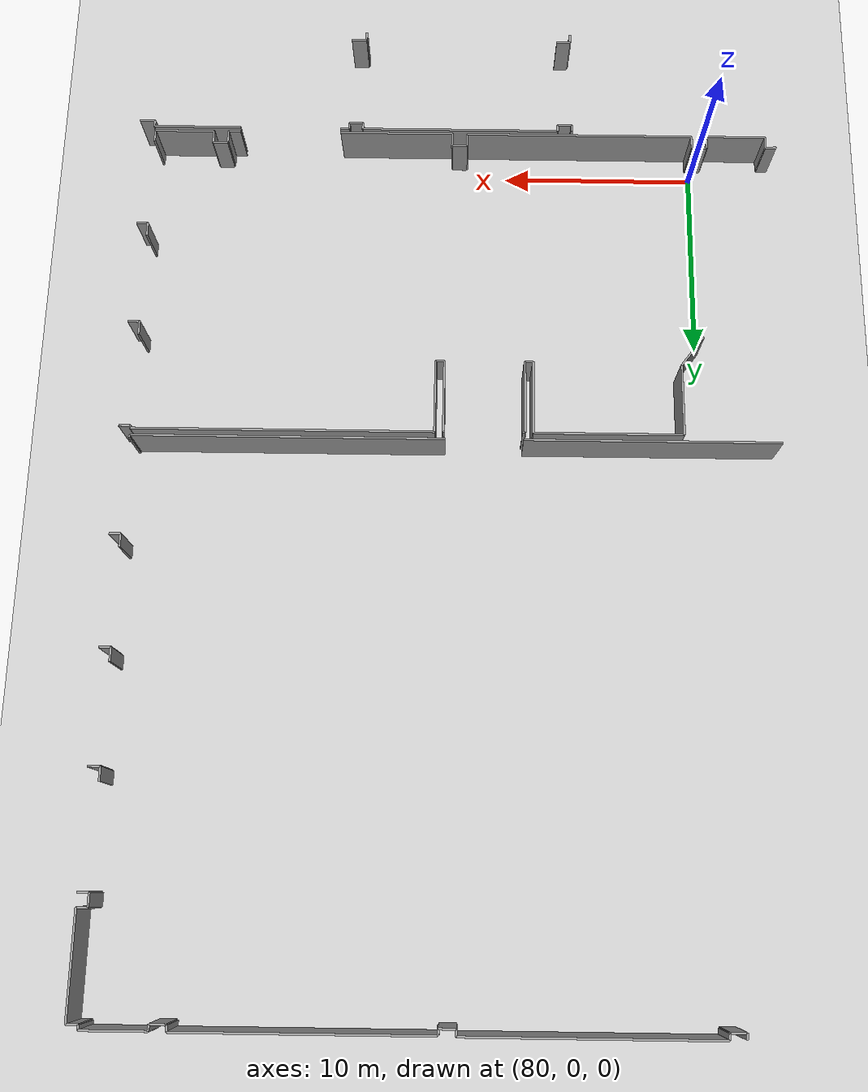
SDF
<sdf version="1.6">
 <world name="default">
  <model name="ground_plane">
   <static>1</static>
   <link name="link">
    <collision name="collision">
     <geometry><plane><normal>0 0 1</normal><size>100 100</size></plane></geometry>
     <surface><friction><ode><mu>100</mu><mu2>50</mu2></ode></friction></surface>
    </collision>
    <visual name="visual">
     <cast_shadows>0</cast_shadows>
     <geometry><plane><normal>0 0 1</normal><size>100 100</size></plane></geometry>
     <material>
      <script><uri>file://media/materials/scripts/gazebo.material</uri><name>Gazebo/Grey</name></script>
     </material>
    </visual>
   </link>
  </model>
  <model name="50015847">
   <static>1</static>
   <link name="Wall_616">
    <collision name="Wall_616_Collision">
     <geometry><box><size>1.94935909894 0.1 2.5</size></box></geometry>
     <pose>0.974679549469 0 1.25 0 0 0</pose>
    </collision>
    <visual name="Wall_616_Visual">
     <pose>0.974679549469 0 1.25 0 0 0</pose>
     <geometry><box><size>1.94935909894 0.1 2.5</size></box></geometry>
     <material>
      <script><uri>file://media/materials/scripts/gazebo.material</uri><name>Gazebo/Grey</name></script>
      <ambient>1 1 1 1</ambient>
     </material>
    </visual>
    <pose>212.298774597 -33.6772258097 0 0 0 0.925756276131</pose>
   </link>
   <link name="Wall_617">
    <collision name="Wall_617_Collision">
     <geometry><box><size>3.7372247928 0.1 2.5</size></box></geometry>
     <pose>1.8686123964 0 1.25 0 0 0</pose>
    </collision>
    <visual name="Wall_617_Visual">
     <pose>1.8686123964 0 1.25 0 0 0</pose>
     <geometry><box><size>3.7372247928 0.1 2.5</size></box></geometry>
     <material>
      <script><uri>file://media/materials/scripts/gazebo.material</uri><name>Gazebo/Grey</name></script>
      <ambient>1 1 1 1</ambient>
     </material>
    </visual>
    <pose>213.470788631 -32.1195403468 0 0 0 1.57079632679</pose>
   </link>
   <link name="Wall_618">
    <collision name="Wall_618_Collision">
     <geometry><box><size>7.55326180912 0.1 2.5</size></box></geometry>
     <pose>3.77663090456 0 1.25 0 0 0</pose>
    </collision>
    <visual name="Wall_618_Visual">
     <pose>3.77663090456 0 1.25 0 0 0</pose>
     <geometry><box><size>7.55326180912 0.1 2.5</size></box></geometry>
     <material>
      <script><uri>file://media/materials/scripts/gazebo.material</uri><name>Gazebo/Grey</name></script>
      <ambient>1 1 1 1</ambient>
     </material>
    </visual>
    <pose>213.470788631 -28.382315554 0 0 0 0.0</pose>
   </link>
   <link name="Wall_619">
    <collision name="Wall_619_Collision">
     <geometry><box><size>3.82086744292 0.1 2.5</size></box></geometry>
     <pose>1.91043372146 0 1.25 0 0 0</pose>
    </collision>
    <visual name="Wall_619_Visual">
     <pose>1.91043372146 0 1.25 0 0 0</pose>
     <geometry><box><size>3.82086744292 0.1 2.5</size></box></geometry>
     <material>
      <script><uri>file://media/materials/scripts/gazebo.material</uri><name>Gazebo/Grey</name></script>
      <ambient>1 1 1 1</ambient>
     </material>
    </visual>
    <pose>221.02405044 -28.382315554 0 0 0 -1.57079632679</pose>
   </link>
   <link name="Wall_620">
    <collision name="Wall_620_Collision">
     <geometry><box><size>0.414399755936 0.1 2.5</size></box></geometry>
     <pose>0.207199877968 0 1.25 0 0 0</pose>
    </collision>
    <visual name="Wall_620_Visual">
     <pose>0.207199877968 0 1.25 0 0 0</pose>
     <geometry><box><size>0.414399755936 0.1 2.5</size></box></geometry>
     <material>
      <script><uri>file://media/materials/scripts/gazebo.material</uri><name>Gazebo/Grey</name></script>
      <ambient>1 1 1 1</ambient>
     </material>
    </visual>
    <pose>221.02405044 -32.2031829969 0 0 0 0.0</pose>
   </link>
   <link name="Wall_621">
    <collision name="Wall_621_Collision">
     <geometry><box><size>3.79417298012 0.1 2.5</size></box></geometry>
     <pose>1.89708649006 0 1.25 0 0 0</pose>
    </collision>
    <visual name="Wall_621_Visual">
     <pose>1.89708649006 0 1.25 0 0 0</pose>
     <geometry><box><size>3.79417298012 0.1 2.5</size></box></geometry>
     <material>
      <script><uri>file://media/materials/scripts/gazebo.material</uri><name>Gazebo/Grey</name></script>
      <ambient>1 1 1 1</ambient>
     </material>
    </visual>
    <pose>221.438450196 -32.2031829969 0 0 0 1.57079632679</pose>
   </link>
   <link name="Wall_622">
    <collision name="Wall_622_Collision">
     <geometry><box><size>0.129658819342 0.1 2.5</size></box></geometry>
     <pose>0.064829409671 0 1.25 0 0 0</pose>
    </collision>
    <visual name="Wall_622_Visual">
     <pose>0.064829409671 0 1.25 0 0 0</pose>
     <geometry><box><size>0.129658819342 0.1 2.5</size></box></geometry>
     <material>
      <script><uri>file://media/materials/scripts/gazebo.material</uri><name>Gazebo/Grey</name></script>
      <ambient>1 1 1 1</ambient>
     </material>
    </visual>
    <pose>221.438450196 -28.4090100168 0 0 0 0.0</pose>
   </link>
   <link name="Wall_623">
    <collision name="Wall_623_Collision">
     <geometry><box><size>0.0661005745665 0.1 2.5</size></box></geometry>
     <pose>0.0330502872833 0 1.25 0 0 0</pose>
    </collision>
    <visual name="Wall_623_Visual">
     <pose>0.0330502872833 0 1.25 0 0 0</pose>
     <geometry><box><size>0.0661005745665 0.1 2.5</size></box></geometry>
     <material>
      <script><uri>file://media/materials/scripts/gazebo.material</uri><name>Gazebo/Grey</name></script>
      <ambient>1 1 1 1</ambient>
     </material>
    </visual>
    <pose>225.475669904 -28.4090100168 0 0 0 0.0</pose>
   </link>
   <link name="Wall_624">
    <collision name="Wall_624_Collision">
     <geometry><box><size>3.79518991204 0.1 2.5</size></box></geometry>
     <pose>1.89759495602 0 1.25 0 0 0</pose>
    </collision>
    <visual name="Wall_624_Visual">
     <pose>1.89759495602 0 1.25 0 0 0</pose>
     <geometry><box><size>3.79518991204 0.1 2.5</size></box></geometry>
     <material>
      <script><uri>file://media/materials/scripts/gazebo.material</uri><name>Gazebo/Grey</name></script>
      <ambient>1 1 1 1</ambient>
     </material>
    </visual>
    <pose>225.541770478 -28.4090100168 0 0 0 -1.57079632679</pose>
   </link>
   <link name="Wall_625">
    <collision name="Wall_625_Collision">
     <geometry><box><size>0.437280724056 0.1 2.5</size></box></geometry>
     <pose>0.218640362028 0 1.25 0 0 0</pose>
    </collision>
    <visual name="Wall_625_Visual">
     <pose>0.218640362028 0 1.25 0 0 0</pose>
     <geometry><box><size>0.437280724056 0.1 2.5</size></box></geometry>
     <material>
      <script><uri>file://media/materials/scripts/gazebo.material</uri><name>Gazebo/Grey</name></script>
      <ambient>1 1 1 1</ambient>
     </material>
    </visual>
    <pose>225.541770478 -32.2041999288 0 0 0 0.0</pose>
   </link>
   <link name="Wall_626">
    <collision name="Wall_626_Collision">
     <geometry><box><size>3.82493517059 0.1 2.5</size></box></geometry>
     <pose>1.9124675853 0 1.25 0 0 0</pose>
    </collision>
    <visual name="Wall_626_Visual">
     <pose>1.9124675853 0 1.25 0 0 0</pose>
     <geometry><box><size>3.82493517059 0.1 2.5</size></box></geometry>
     <material>
      <script><uri>file://media/materials/scripts/gazebo.material</uri><name>Gazebo/Grey</name></script>
      <ambient>1 1 1 1</ambient>
     </material>
    </visual>
    <pose>225.979051203 -32.2041999288 0 0 0 1.57079632679</pose>
   </link>
   <link name="Wall_627">
    <collision name="Wall_627_Collision">
     <geometry><box><size>15.2412670972 0.1 2.5</size></box></geometry>
     <pose>7.62063354858 0 1.25 0 0 0</pose>
    </collision>
    <visual name="Wall_627_Visual">
     <pose>7.62063354858 0 1.25 0 0 0</pose>
     <geometry><box><size>15.2412670972 0.1 2.5</size></box></geometry>
     <material>
      <script><uri>file://media/materials/scripts/gazebo.material</uri><name>Gazebo/Grey</name></script>
      <ambient>1 1 1 1</ambient>
     </material>
    </visual>
    <pose>225.979051203 -28.3792647582 0 0 0 0.0</pose>
   </link>
   <link name="Wall_628">
    <collision name="Wall_628_Collision">
     <geometry><box><size>0.133472314029 0.1 2.5</size></box></geometry>
     <pose>0.0667361570143 0 1.25 0 0 0</pose>
    </collision>
    <visual name="Wall_628_Visual">
     <pose>0.0667361570143 0 1.25 0 0 0</pose>
     <geometry><box><size>0.133472314029 0.1 2.5</size></box></geometry>
     <material>
      <script><uri>file://media/materials/scripts/gazebo.material</uri><name>Gazebo/Grey</name></script>
      <ambient>1 1 1 1</ambient>
     </material>
    </visual>
    <pose>241.2203183 -28.3792647582 0 0 0 -1.57079632679</pose>
   </link>
   <link name="Wall_629">
    <collision name="Wall_629_Collision">
     <geometry><box><size>0.589820511517 0.1 2.5</size></box></geometry>
     <pose>0.294910255758 0 1.25 0 0 0</pose>
    </collision>
    <visual name="Wall_629_Visual">
     <pose>0.294910255758 0 1.25 0 0 0</pose>
     <geometry><box><size>0.589820511517 0.1 2.5</size></box></geometry>
     <material>
      <script><uri>file://media/materials/scripts/gazebo.material</uri><name>Gazebo/Grey</name></script>
      <ambient>1 1 1 1</ambient>
     </material>
    </visual>
    <pose>241.2203183 -28.5127370723 0 0 0 0.0</pose>
   </link>
   <link name="Wall_632">
    <collision name="Wall_632_Collision">
     <geometry><box><size>0.707276147862 0.1 2.5</size></box></geometry>
     <pose>0.353638073931 0 1.25 0 0 0</pose>
    </collision>
    <visual name="Wall_632_Visual">
     <pose>0.353638073931 0 1.25 0 0 0</pose>
     <geometry><box><size>0.707276147862 0.1 2.5</size></box></geometry>
     <material>
      <script><uri>file://media/materials/scripts/gazebo.material</uri><name>Gazebo/Grey</name></script>
      <ambient>1 1 1 1</ambient>
     </material>
    </visual>
    <pose>241.21269131 -33.4573142828 0 0 0 -1.57079632679</pose>
   </link>
   <link name="Wall_633">
    <collision name="Wall_633_Collision">
     <geometry><box><size>0.59744750089 0.1 2.5</size></box></geometry>
     <pose>0.298723750445 0 1.25 0 0 0</pose>
    </collision>
    <visual name="Wall_633_Visual">
     <pose>0.298723750445 0 1.25 0 0 0</pose>
     <geometry><box><size>0.59744750089 0.1 2.5</size></box></geometry>
     <material>
      <script><uri>file://media/materials/scripts/gazebo.material</uri><name>Gazebo/Grey</name></script>
      <ambient>1 1 1 1</ambient>
     </material>
    </visual>
    <pose>241.21269131 -34.1645904307 0 0 0 0.0</pose>
   </link>
   <link name="Wall_636">
    <collision name="Wall_636_Collision">
     <geometry><box><size>0.684903645701 0.1 2.5</size></box></geometry>
     <pose>0.34245182285 0 1.25 0 0 0</pose>
    </collision>
    <visual name="Wall_636_Visual">
     <pose>0.34245182285 0 1.25 0 0 0</pose>
     <geometry><box><size>0.684903645701 0.1 2.5</size></box></geometry>
     <material>
      <script><uri>file://media/materials/scripts/gazebo.material</uri><name>Gazebo/Grey</name></script>
      <ambient>1 1 1 1</ambient>
     </material>
    </visual>
    <pose>241.230487619 -39.075354655 0 0 0 -1.57079632679</pose>
   </link>
   <link name="Wall_637">
    <collision name="Wall_637_Collision">
     <geometry><box><size>0.582193522144 0.1 2.5</size></box></geometry>
     <pose>0.291096761072 0 1.25 0 0 0</pose>
    </collision>
    <visual name="Wall_637_Visual">
     <pose>0.291096761072 0 1.25 0 0 0</pose>
     <geometry><box><size>0.582193522144 0.1 2.5</size></box></geometry>
     <material>
      <script><uri>file://media/materials/scripts/gazebo.material</uri><name>Gazebo/Grey</name></script>
      <ambient>1 1 1 1</ambient>
     </material>
    </visual>
    <pose>241.230487619 -39.7602583007 0 0 0 0.0</pose>
   </link>
   <link name="Wall_640">
    <collision name="Wall_640_Collision">
     <geometry><box><size>0.622108099863 0.1 2.5</size></box></geometry>
     <pose>0.311054049931 0 1.25 0 0 0</pose>
    </collision>
    <visual name="Wall_640_Visual">
     <pose>0.311054049931 0 1.25 0 0 0</pose>
     <geometry><box><size>0.622108099863 0.1 2.5</size></box></geometry>
     <material>
      <script><uri>file://media/materials/scripts/gazebo.material</uri><name>Gazebo/Grey</name></script>
      <ambient>1 1 1 1</ambient>
     </material>
    </visual>
    <pose>241.248283927 -44.6682259623 0 0 0 -1.57079632679</pose>
   </link>
   <link name="Wall_641">
    <collision name="Wall_641_Collision">
     <geometry><box><size>3.1423196217 0.1 2.5</size></box></geometry>
     <pose>1.57115981085 0 1.25 0 0 0</pose>
    </collision>
    <visual name="Wall_641_Visual">
     <pose>1.57115981085 0 1.25 0 0 0</pose>
     <geometry><box><size>3.1423196217 0.1 2.5</size></box></geometry>
     <material>
      <script><uri>file://media/materials/scripts/gazebo.material</uri><name>Gazebo/Grey</name></script>
      <ambient>1 1 1 1</ambient>
     </material>
    </visual>
    <pose>241.248283927 -45.2903340621 0 0 0 3.14159265359</pose>
   </link>
   <link name="Wall_642">
    <collision name="Wall_642_Collision">
     <geometry><box><size>0.678293588244 0.1 2.5</size></box></geometry>
     <pose>0.339146794122 0 1.25 0 0 0</pose>
    </collision>
    <visual name="Wall_642_Visual">
     <pose>0.339146794122 0 1.25 0 0 0</pose>
     <geometry><box><size>0.678293588244 0.1 2.5</size></box></geometry>
     <material>
      <script><uri>file://media/materials/scripts/gazebo.material</uri><name>Gazebo/Grey</name></script>
      <ambient>1 1 1 1</ambient>
     </material>
    </visual>
    <pose>238.105964306 -45.2903340621 0 0 0 1.57079632679</pose>
   </link>
   <link name="Wall_643">
    <collision name="Wall_643_Collision">
     <geometry><box><size>0.780495245843 0.1 2.5</size></box></geometry>
     <pose>0.390247622922 0 1.25 0 0 0</pose>
    </collision>
    <visual name="Wall_643_Visual">
     <pose>0.390247622922 0 1.25 0 0 0</pose>
     <geometry><box><size>0.780495245843 0.1 2.5</size></box></geometry>
     <material>
      <script><uri>file://media/materials/scripts/gazebo.material</uri><name>Gazebo/Grey</name></script>
      <ambient>1 1 1 1</ambient>
     </material>
    </visual>
    <pose>238.105964306 -44.6120404739 0 0 0 3.14159265359</pose>
   </link>
   <link name="Wall_644">
    <collision name="Wall_644_Collision">
     <geometry><box><size>0.683124014847 0.1 2.5</size></box></geometry>
     <pose>0.341562007424 0 1.25 0 0 0</pose>
    </collision>
    <visual name="Wall_644_Visual">
     <pose>0.341562007424 0 1.25 0 0 0</pose>
     <geometry><box><size>0.683124014847 0.1 2.5</size></box></geometry>
     <material>
      <script><uri>file://media/materials/scripts/gazebo.material</uri><name>Gazebo/Grey</name></script>
      <ambient>1 1 1 1</ambient>
     </material>
    </visual>
    <pose>237.32546906 -44.6120404739 0 0 0 -1.57079632679</pose>
   </link>
   <link name="Wall_645">
    <collision name="Wall_645_Collision">
     <geometry><box><size>0.655921086083 0.1 2.5</size></box></geometry>
     <pose>0.327960543042 0 1.25 0 0 0</pose>
    </collision>
    <visual name="Wall_645_Visual">
     <pose>0.327960543042 0 1.25 0 0 0</pose>
     <geometry><box><size>0.655921086083 0.1 2.5</size></box></geometry>
     <material>
      <script><uri>file://media/materials/scripts/gazebo.material</uri><name>Gazebo/Grey</name></script>
      <ambient>1 1 1 1</ambient>
     </material>
    </visual>
    <pose>237.32546906 -45.2951644887 0 0 0 3.14159265359</pose>
   </link>
   <link name="Wall_646">
    <collision name="Wall_646_Collision">
     <geometry><box><size>5.99227131744 0.1 2.5</size></box></geometry>
     <pose>2.99613565872 0 1.25 0 0 0</pose>
    </collision>
    <visual name="Wall_646_Visual">
     <pose>2.99613565872 0 1.25 0 0 0</pose>
     <geometry><box><size>5.99227131744 0.1 2.5</size></box></geometry>
     <material>
      <script><uri>file://media/materials/scripts/gazebo.material</uri><name>Gazebo/Grey</name></script>
      <ambient>1 1 1 1</ambient>
     </material>
    </visual>
    <pose>231.302689785 -45.2951644887 0 0 0 3.14159265359</pose>
   </link>
   <link name="Wall_647">
    <collision name="Wall_647_Collision">
     <geometry><box><size>0.703716886154 0.1 2.5</size></box></geometry>
     <pose>0.351858443077 0 1.25 0 0 0</pose>
    </collision>
    <visual name="Wall_647_Visual">
     <pose>0.351858443077 0 1.25 0 0 0</pose>
     <geometry><box><size>0.703716886154 0.1 2.5</size></box></geometry>
     <material>
      <script><uri>file://media/materials/scripts/gazebo.material</uri><name>Gazebo/Grey</name></script>
      <ambient>1 1 1 1</ambient>
     </material>
    </visual>
    <pose>225.310418467 -45.2951644887 0 0 0 1.57079632679</pose>
   </link>
   <link name="Wall_648">
    <collision name="Wall_648_Collision">
     <geometry><box><size>0.793206894798 0.1 2.5</size></box></geometry>
     <pose>0.396603447399 0 1.25 0 0 0</pose>
    </collision>
    <visual name="Wall_648_Visual">
     <pose>0.396603447399 0 1.25 0 0 0</pose>
     <geometry><box><size>0.793206894798 0.1 2.5</size></box></geometry>
     <material>
      <script><uri>file://media/materials/scripts/gazebo.material</uri><name>Gazebo/Grey</name></script>
      <ambient>1 1 1 1</ambient>
     </material>
    </visual>
    <pose>225.310418467 -44.5914476026 0 0 0 3.14159265359</pose>
   </link>
   <link name="Wall_649">
    <collision name="Wall_649_Collision">
     <geometry><box><size>0.692276402095 0.1 2.5</size></box></geometry>
     <pose>0.346138201047 0 1.25 0 0 0</pose>
    </collision>
    <visual name="Wall_649_Visual">
     <pose>0.346138201047 0 1.25 0 0 0</pose>
     <geometry><box><size>0.692276402095 0.1 2.5</size></box></geometry>
     <material>
      <script><uri>file://media/materials/scripts/gazebo.material</uri><name>Gazebo/Grey</name></script>
      <ambient>1 1 1 1</ambient>
     </material>
    </visual>
    <pose>224.517211573 -44.5914476026 0 0 0 -1.57079632679</pose>
   </link>
   <link name="Wall_650">
    <collision name="Wall_650_Collision">
     <geometry><box><size>12.0201352519 0.1 2.5</size></box></geometry>
     <pose>6.01006762597 0 1.25 0 0 0</pose>
    </collision>
    <visual name="Wall_650_Visual">
     <pose>6.01006762597 0 1.25 0 0 0</pose>
     <geometry><box><size>12.0201352519 0.1 2.5</size></box></geometry>
     <material>
      <script><uri>file://media/materials/scripts/gazebo.material</uri><name>Gazebo/Grey</name></script>
      <ambient>1 1 1 1</ambient>
     </material>
    </visual>
    <pose>224.517211573 -45.2837240047 0 0 0 3.14159265359</pose>
   </link>
   <link name="Wall_651">
    <collision name="Wall_651_Collision">
     <geometry><box><size>0.681090151014 0.1 2.5</size></box></geometry>
     <pose>0.340545075507 0 1.25 0 0 0</pose>
    </collision>
    <visual name="Wall_651_Visual">
     <pose>0.340545075507 0 1.25 0 0 0</pose>
     <geometry><box><size>0.681090151014 0.1 2.5</size></box></geometry>
     <material>
      <script><uri>file://media/materials/scripts/gazebo.material</uri><name>Gazebo/Grey</name></script>
      <ambient>1 1 1 1</ambient>
     </material>
    </visual>
    <pose>212.497076321 -45.2837240047 0 0 0 1.57079632679</pose>
   </link>
   <link name="Wall_652">
    <collision name="Wall_652_Collision">
     <geometry><box><size>0.780495245843 0.1 2.5</size></box></geometry>
     <pose>0.390247622922 0 1.25 0 0 0</pose>
    </collision>
    <visual name="Wall_652_Visual">
     <pose>0.390247622922 0 1.25 0 0 0</pose>
     <geometry><box><size>0.780495245843 0.1 2.5</size></box></geometry>
     <material>
      <script><uri>file://media/materials/scripts/gazebo.material</uri><name>Gazebo/Grey</name></script>
      <ambient>1 1 1 1</ambient>
     </material>
    </visual>
    <pose>212.497076321 -44.6026338537 0 0 0 3.14159265359</pose>
   </link>
   <link name="Wall_653">
    <collision name="Wall_653_Collision">
     <geometry><box><size>0.689734072304 0.1 2.5</size></box></geometry>
     <pose>0.344867036152 0 1.25 0 0 0</pose>
    </collision>
    <visual name="Wall_653_Visual">
     <pose>0.344867036152 0 1.25 0 0 0</pose>
     <geometry><box><size>0.689734072304 0.1 2.5</size></box></geometry>
     <material>
      <script><uri>file://media/materials/scripts/gazebo.material</uri><name>Gazebo/Grey</name></script>
      <ambient>1 1 1 1</ambient>
     </material>
    </visual>
    <pose>211.716581075 -44.6026338537 0 0 0 -1.57079632679</pose>
   </link>
   <link name="Wall_654">
    <collision name="Wall_654_Collision">
     <geometry><box><size>3.1484212132 0.1 2.5</size></box></geometry>
     <pose>1.5742106066 0 1.25 0 0 0</pose>
    </collision>
    <visual name="Wall_654_Visual">
     <pose>1.5742106066 0 1.25 0 0 0</pose>
     <geometry><box><size>3.1484212132 0.1 2.5</size></box></geometry>
     <material>
      <script><uri>file://media/materials/scripts/gazebo.material</uri><name>Gazebo/Grey</name></script>
      <ambient>1 1 1 1</ambient>
     </material>
    </visual>
    <pose>211.716581075 -45.292367926 0 0 0 3.14159265359</pose>
   </link>
   <link name="Wall_655">
    <collision name="Wall_655_Collision">
     <geometry><box><size>0.615498042406 0.1 2.5</size></box></geometry>
     <pose>0.307749021203 0 1.25 0 0 0</pose>
    </collision>
    <visual name="Wall_655_Visual">
     <pose>0.307749021203 0 1.25 0 0 0</pose>
     <geometry><box><size>0.615498042406 0.1 2.5</size></box></geometry>
     <material>
      <script><uri>file://media/materials/scripts/gazebo.material</uri><name>Gazebo/Grey</name></script>
      <ambient>1 1 1 1</ambient>
     </material>
    </visual>
    <pose>208.568159862 -45.292367926 0 0 0 1.57079632679</pose>
   </link>
   <link name="Wall_656">
    <collision name="Wall_656_Collision">
     <geometry><box><size>0.573441969969 0.1 2.5</size></box></geometry>
     <pose>0.286720984984 0 1.25 0 0 0</pose>
    </collision>
    <visual name="Wall_656_Visual">
     <pose>0.286720984984 0 1.25 0 0 0</pose>
     <geometry><box><size>0.573441969969 0.1 2.5</size></box></geometry>
     <material>
      <script><uri>file://media/materials/scripts/gazebo.material</uri><name>Gazebo/Grey</name></script>
      <ambient>1 1 1 1</ambient>
     </material>
    </visual>
    <pose>208.568159862 -44.6768698836 0 0 0 -3.11898010054</pose>
   </link>
   <link name="Wall_681">
    <collision name="Wall_681_Collision">
     <geometry><box><size>0.278639345096 0.1 2.5</size></box></geometry>
     <pose>0.139319672548 0 1.25 0 0 0</pose>
    </collision>
    <visual name="Wall_681_Visual">
     <pose>0.139319672548 0 1.25 0 0 0</pose>
     <geometry><box><size>0.278639345096 0.1 2.5</size></box></geometry>
     <material>
      <script><uri>file://media/materials/scripts/gazebo.material</uri><name>Gazebo/Grey</name></script>
      <ambient>1 1 1 1</ambient>
     </material>
    </visual>
    <pose>211.698784766 -0.261605735496 0 0 0 -1.57079632679</pose>
   </link>
   <link name="Wall_682">
    <collision name="Wall_682_Collision">
     <geometry><box><size>0.785579905425 0.1 2.5</size></box></geometry>
     <pose>0.392789952713 0 1.25 0 0 0</pose>
    </collision>
    <visual name="Wall_682_Visual">
     <pose>0.392789952713 0 1.25 0 0 0</pose>
     <geometry><box><size>0.785579905425 0.1 2.5</size></box></geometry>
     <material>
      <script><uri>file://media/materials/scripts/gazebo.material</uri><name>Gazebo/Grey</name></script>
      <ambient>1 1 1 1</ambient>
     </material>
    </visual>
    <pose>211.698784766 -0.540245080592 0 0 0 0.0</pose>
   </link>
   <link name="Wall_683">
    <collision name="Wall_683_Collision">
     <geometry><box><size>0.320587786648 0.1 2.5</size></box></geometry>
     <pose>0.160293893324 0 1.25 0 0 0</pose>
    </collision>
    <visual name="Wall_683_Visual">
     <pose>0.160293893324 0 1.25 0 0 0</pose>
     <geometry><box><size>0.320587786648 0.1 2.5</size></box></geometry>
     <material>
      <script><uri>file://media/materials/scripts/gazebo.material</uri><name>Gazebo/Grey</name></script>
      <ambient>1 1 1 1</ambient>
     </material>
    </visual>
    <pose>212.484364672 -0.540245080592 0 0 0 1.57079632679</pose>
   </link>
   <link name="Wall_684">
    <collision name="Wall_684_Collision">
     <geometry><box><size>12.0328469009 0.1 2.5</size></box></geometry>
     <pose>6.01642345045 0 1.25 0 0 0</pose>
    </collision>
    <visual name="Wall_684_Visual">
     <pose>6.01642345045 0 1.25 0 0 0</pose>
     <geometry><box><size>12.0328469009 0.1 2.5</size></box></geometry>
     <material>
      <script><uri>file://media/materials/scripts/gazebo.material</uri><name>Gazebo/Grey</name></script>
      <ambient>1 1 1 1</ambient>
     </material>
    </visual>
    <pose>212.484364672 -0.219657293944 0 0 0 0.0</pose>
   </link>
   <link name="Wall_685">
    <collision name="Wall_685_Collision">
     <geometry><box><size>0.319062388773 0.1 2.5</size></box></geometry>
     <pose>0.159531194387 0 1.25 0 0 0</pose>
    </collision>
    <visual name="Wall_685_Visual">
     <pose>0.159531194387 0 1.25 0 0 0</pose>
     <geometry><box><size>0.319062388773 0.1 2.5</size></box></geometry>
     <material>
      <script><uri>file://media/materials/scripts/gazebo.material</uri><name>Gazebo/Grey</name></script>
      <ambient>1 1 1 1</ambient>
     </material>
    </visual>
    <pose>224.517211573 -0.219657293944 0 0 0 -1.57079632679</pose>
   </link>
   <link name="Wall_686">
    <collision name="Wall_686_Collision">
     <geometry><box><size>0.803376213963 0.1 2.5</size></box></geometry>
     <pose>0.401688106981 0 1.25 0 0 0</pose>
    </collision>
    <visual name="Wall_686_Visual">
     <pose>0.401688106981 0 1.25 0 0 0</pose>
     <geometry><box><size>0.803376213963 0.1 2.5</size></box></geometry>
     <material>
      <script><uri>file://media/materials/scripts/gazebo.material</uri><name>Gazebo/Grey</name></script>
      <ambient>1 1 1 1</ambient>
     </material>
    </visual>
    <pose>224.517211573 -0.538719682717 0 0 0 0.0</pose>
   </link>
   <link name="Wall_687">
    <collision name="Wall_687_Collision">
     <geometry><box><size>0.296689886612 0.1 2.5</size></box></geometry>
     <pose>0.148344943306 0 1.25 0 0 0</pose>
    </collision>
    <visual name="Wall_687_Visual">
     <pose>0.148344943306 0 1.25 0 0 0</pose>
     <geometry><box><size>0.296689886612 0.1 2.5</size></box></geometry>
     <material>
      <script><uri>file://media/materials/scripts/gazebo.material</uri><name>Gazebo/Grey</name></script>
      <ambient>1 1 1 1</ambient>
     </material>
    </visual>
    <pose>225.320587787 -0.538719682717 0 0 0 1.57079632679</pose>
   </link>
   <link name="Wall_688">
    <collision name="Wall_688_Collision">
     <geometry><box><size>11.9820003051 0.1 2.5</size></box></geometry>
     <pose>5.99100015254 0 1.25 0 0 0</pose>
    </collision>
    <visual name="Wall_688_Visual">
     <pose>5.99100015254 0 1.25 0 0 0</pose>
     <geometry><box><size>11.9820003051 0.1 2.5</size></box></geometry>
     <material>
      <script><uri>file://media/materials/scripts/gazebo.material</uri><name>Gazebo/Grey</name></script>
      <ambient>1 1 1 1</ambient>
     </material>
    </visual>
    <pose>225.320587787 -0.242029796105 0 0 0 0.0</pose>
   </link>
   <link name="Wall_689">
    <collision name="Wall_689_Collision">
     <geometry><box><size>0.298215284487 0.1 2.5</size></box></geometry>
     <pose>0.149107642243 0 1.25 0 0 0</pose>
    </collision>
    <visual name="Wall_689_Visual">
     <pose>0.149107642243 0 1.25 0 0 0</pose>
     <geometry><box><size>0.298215284487 0.1 2.5</size></box></geometry>
     <material>
      <script><uri>file://media/materials/scripts/gazebo.material</uri><name>Gazebo/Grey</name></script>
      <ambient>1 1 1 1</ambient>
     </material>
    </visual>
    <pose>237.302588092 -0.242029796105 0 0 0 -1.57079632679</pose>
   </link>
   <link name="Wall_690">
    <collision name="Wall_690_Collision">
     <geometry><box><size>0.79829155438 0.1 2.5</size></box></geometry>
     <pose>0.39914577719 0 1.25 0 0 0</pose>
    </collision>
    <visual name="Wall_690_Visual">
     <pose>0.39914577719 0 1.25 0 0 0</pose>
     <geometry><box><size>0.79829155438 0.1 2.5</size></box></geometry>
     <material>
      <script><uri>file://media/materials/scripts/gazebo.material</uri><name>Gazebo/Grey</name></script>
      <ambient>1 1 1 1</ambient>
     </material>
    </visual>
    <pose>237.302588092 -0.540245080592 0 0 0 0.0</pose>
   </link>
   <link name="Wall_691">
    <collision name="Wall_691_Collision">
     <geometry><box><size>0.278639345096 0.1 2.5</size></box></geometry>
     <pose>0.139319672548 0 1.25 0 0 0</pose>
    </collision>
    <visual name="Wall_691_Visual">
     <pose>0.139319672548 0 1.25 0 0 0</pose>
     <geometry><box><size>0.278639345096 0.1 2.5</size></box></geometry>
     <material>
      <script><uri>file://media/materials/scripts/gazebo.material</uri><name>Gazebo/Grey</name></script>
      <ambient>1 1 1 1</ambient>
     </material>
    </visual>
    <pose>238.100879646 -0.540245080592 0 0 0 1.57079632679</pose>
   </link>
   <link name="Wall_692">
    <collision name="Wall_692_Collision">
     <geometry><box><size>3.10418467484 0.1 2.5</size></box></geometry>
     <pose>1.55209233742 0 1.25 0 0 0</pose>
    </collision>
    <visual name="Wall_692_Visual">
     <pose>1.55209233742 0 1.25 0 0 0</pose>
     <geometry><box><size>3.10418467484 0.1 2.5</size></box></geometry>
     <material>
      <script><uri>file://media/materials/scripts/gazebo.material</uri><name>Gazebo/Grey</name></script>
      <ambient>1 1 1 1</ambient>
     </material>
    </visual>
    <pose>238.100879646 -0.261605735496 0 0 0 0.0</pose>
   </link>
   <link name="Wall_693">
    <collision name="Wall_693_Collision">
     <geometry><box><size>0.229572380129 0.1 2.5</size></box></geometry>
     <pose>0.114786190065 0 1.25 0 0 0</pose>
    </collision>
    <visual name="Wall_693_Visual">
     <pose>0.114786190065 0 1.25 0 0 0</pose>
     <geometry><box><size>0.229572380129 0.1 2.5</size></box></geometry>
     <material>
      <script><uri>file://media/materials/scripts/gazebo.material</uri><name>Gazebo/Grey</name></script>
      <ambient>1 1 1 1</ambient>
     </material>
    </visual>
    <pose>241.205064321 -0.261605735496 0 0 0 -1.57079632679</pose>
   </link>
   <link name="Wall_694">
    <collision name="Wall_694_Collision">
     <geometry><box><size>0.566939543398 0.1 2.5</size></box></geometry>
     <pose>0.283469771699 0 1.25 0 0 0</pose>
    </collision>
    <visual name="Wall_694_Visual">
     <pose>0.283469771699 0 1.25 0 0 0</pose>
     <geometry><box><size>0.566939543398 0.1 2.5</size></box></geometry>
     <material>
      <script><uri>file://media/materials/scripts/gazebo.material</uri><name>Gazebo/Grey</name></script>
      <ambient>1 1 1 1</ambient>
     </material>
    </visual>
    <pose>241.205064321 -0.491178115625 0 0 0 0.0</pose>
   </link>
   <link name="Wall_695">
    <collision name="Wall_695_Collision">
     <geometry><box><size>4.94457721056 0.1 2.5</size></box></geometry>
     <pose>2.47228860528 0 1.25 0 0 0</pose>
    </collision>
    <visual name="Wall_695_Visual">
     <pose>2.47228860528 0 1.25 0 0 0</pose>
     <geometry><box><size>4.94457721056 0.1 2.5</size></box></geometry>
     <material>
      <script><uri>file://media/materials/scripts/gazebo.material</uri><name>Gazebo/Grey</name></script>
      <ambient>1 1 1 1</ambient>
     </material>
    </visual>
    <pose>241.772003864 -0.491178115625 0 0 0 -1.57079632679</pose>
   </link>
   <link name="Wall_696">
    <collision name="Wall_696_Collision">
     <geometry><box><size>0.541516245487 0.1 2.5</size></box></geometry>
     <pose>0.270758122744 0 1.25 0 0 0</pose>
    </collision>
    <visual name="Wall_696_Visual">
     <pose>0.270758122744 0 1.25 0 0 0</pose>
     <geometry><box><size>0.541516245487 0.1 2.5</size></box></geometry>
     <material>
      <script><uri>file://media/materials/scripts/gazebo.material</uri><name>Gazebo/Grey</name></script>
      <ambient>1 1 1 1</ambient>
     </material>
    </visual>
    <pose>241.772003864 -5.43575532618 0 0 0 3.14159265359</pose>
   </link>
   <link name="Wall_697">
    <collision name="Wall_697_Collision">
     <geometry><box><size>0.65973458077 0.1 2.5</size></box></geometry>
     <pose>0.329867290385 0 1.25 0 0 0</pose>
    </collision>
    <visual name="Wall_697_Visual">
     <pose>0.329867290385 0 1.25 0 0 0</pose>
     <geometry><box><size>0.65973458077 0.1 2.5</size></box></geometry>
     <material>
      <script><uri>file://media/materials/scripts/gazebo.material</uri><name>Gazebo/Grey</name></script>
      <ambient>1 1 1 1</ambient>
     </material>
    </visual>
    <pose>241.230487619 -5.43575532618 0 0 0 -1.57079632679</pose>
   </link>
   <link name="Wall_698">
    <collision name="Wall_698_Collision">
     <geometry><box><size>0.564397213607 0.1 2.5</size></box></geometry>
     <pose>0.282198606803 0 1.25 0 0 0</pose>
    </collision>
    <visual name="Wall_698_Visual">
     <pose>0.282198606803 0 1.25 0 0 0</pose>
     <geometry><box><size>0.564397213607 0.1 2.5</size></box></geometry>
     <material>
      <script><uri>file://media/materials/scripts/gazebo.material</uri><name>Gazebo/Grey</name></script>
      <ambient>1 1 1 1</ambient>
     </material>
    </visual>
    <pose>241.230487619 -6.09548990695 0 0 0 0.0</pose>
   </link>
   <link name="Wall_701">
    <collision name="Wall_701_Collision">
     <geometry><box><size>0.683124014847 0.1 2.5</size></box></geometry>
     <pose>0.341562007424 0 1.25 0 0 0</pose>
    </collision>
    <visual name="Wall_701_Visual">
     <pose>0.341562007424 0 1.25 0 0 0</pose>
     <geometry><box><size>0.683124014847 0.1 2.5</size></box></geometry>
     <material>
      <script><uri>file://media/materials/scripts/gazebo.material</uri><name>Gazebo/Grey</name></script>
      <ambient>1 1 1 1</ambient>
     </material>
    </visual>
    <pose>241.225402959 -11.0321858952 0 0 0 -1.57079632679</pose>
   </link>
   <link name="Wall_702">
    <collision name="Wall_702_Collision">
     <geometry><box><size>0.59744750089 0.1 2.5</size></box></geometry>
     <pose>0.298723750445 0 1.25 0 0 0</pose>
    </collision>
    <visual name="Wall_702_Visual">
     <pose>0.298723750445 0 1.25 0 0 0</pose>
     <geometry><box><size>0.59744750089 0.1 2.5</size></box></geometry>
     <material>
      <script><uri>file://media/materials/scripts/gazebo.material</uri><name>Gazebo/Grey</name></script>
      <ambient>1 1 1 1</ambient>
     </material>
    </visual>
    <pose>241.225402959 -11.71530991 0 0 0 0.0</pose>
   </link>
   <link name="Wall_705">
    <collision name="Wall_705_Collision">
     <geometry><box><size>0.698632226572 0.1 2.5</size></box></geometry>
     <pose>0.349316113286 0 1.25 0 0 0</pose>
    </collision>
    <visual name="Wall_705_Visual">
     <pose>0.349316113286 0 1.25 0 0 0</pose>
     <geometry><box><size>0.698632226572 0.1 2.5</size></box></geometry>
     <material>
      <script><uri>file://media/materials/scripts/gazebo.material</uri><name>Gazebo/Grey</name></script>
      <ambient>1 1 1 1</ambient>
     </material>
    </visual>
    <pose>241.222860629 -16.6136167184 0 0 0 -1.57079632679</pose>
   </link>
   <link name="Wall_706">
    <collision name="Wall_706_Collision">
     <geometry><box><size>0.592362841308 0.1 2.5</size></box></geometry>
     <pose>0.296181420654 0 1.25 0 0 0</pose>
    </collision>
    <visual name="Wall_706_Visual">
     <pose>0.296181420654 0 1.25 0 0 0</pose>
     <geometry><box><size>0.592362841308 0.1 2.5</size></box></geometry>
     <material>
      <script><uri>file://media/materials/scripts/gazebo.material</uri><name>Gazebo/Grey</name></script>
      <ambient>1 1 1 1</ambient>
     </material>
    </visual>
    <pose>241.222860629 -17.3122489449 0 0 0 0.0</pose>
   </link>
   <link name="Wall_710">
    <collision name="Wall_710_Collision">
     <geometry><box><size>0.678547821223 0.1 2.5</size></box></geometry>
     <pose>0.339273910612 0 1.25 0 0 0</pose>
    </collision>
    <visual name="Wall_710_Visual">
     <pose>0.339273910612 0 1.25 0 0 0</pose>
     <geometry><box><size>0.678547821223 0.1 2.5</size></box></geometry>
     <material>
      <script><uri>file://media/materials/scripts/gazebo.material</uri><name>Gazebo/Grey</name></script>
      <ambient>1 1 1 1</ambient>
     </material>
    </visual>
    <pose>241.235572278 -22.2367417501 0 0 0 -1.57079632679</pose>
   </link>
   <link name="Wall_711">
    <collision name="Wall_711_Collision">
     <geometry><box><size>0.574566532771 0.1 2.5</size></box></geometry>
     <pose>0.287283266385 0 1.25 0 0 0</pose>
    </collision>
    <visual name="Wall_711_Visual">
     <pose>0.287283266385 0 1.25 0 0 0</pose>
     <geometry><box><size>0.574566532771 0.1 2.5</size></box></geometry>
     <material>
      <script><uri>file://media/materials/scripts/gazebo.material</uri><name>Gazebo/Grey</name></script>
      <ambient>1 1 1 1</ambient>
     </material>
    </visual>
    <pose>241.235572278 -22.9152895714 0 0 0 0.0</pose>
   </link>
   <link name="Wall_714">
    <collision name="Wall_714_Collision">
     <geometry><box><size>0.144658565109 0.1 2.5</size></box></geometry>
     <pose>0.0723292825545 0 1.25 0 0 0</pose>
    </collision>
    <visual name="Wall_714_Visual">
     <pose>0.0723292825545 0 1.25 0 0 0</pose>
     <geometry><box><size>0.144658565109 0.1 2.5</size></box></geometry>
     <material>
      <script><uri>file://media/materials/scripts/gazebo.material</uri><name>Gazebo/Grey</name></script>
      <ambient>1 1 1 1</ambient>
     </material>
    </visual>
    <pose>241.225402959 -27.8741038287 0 0 0 -1.57079632679</pose>
   </link>
   <link name="Wall_715">
    <collision name="Wall_715_Collision">
     <geometry><box><size>15.7827833427 0.1 2.5</size></box></geometry>
     <pose>7.89139167133 0 1.25 0 0 0</pose>
    </collision>
    <visual name="Wall_715_Visual">
     <pose>7.89139167133 0 1.25 0 0 0</pose>
     <geometry><box><size>15.7827833427 0.1 2.5</size></box></geometry>
     <material>
      <script><uri>file://media/materials/scripts/gazebo.material</uri><name>Gazebo/Grey</name></script>
      <ambient>1 1 1 1</ambient>
     </material>
    </visual>
    <pose>241.225402959 -28.0187623939 0 0 0 3.14159265359</pose>
   </link>
   <link name="Wall_716">
    <collision name="Wall_716_Collision">
     <geometry><box><size>12.9582574986 0.1 2.5</size></box></geometry>
     <pose>6.47912874932 0 1.25 0 0 0</pose>
    </collision>
    <visual name="Wall_716_Visual">
     <pose>6.47912874932 0 1.25 0 0 0</pose>
     <geometry><box><size>12.9582574986 0.1 2.5</size></box></geometry>
     <material>
      <script><uri>file://media/materials/scripts/gazebo.material</uri><name>Gazebo/Grey</name></script>
      <ambient>1 1 1 1</ambient>
     </material>
    </visual>
    <pose>221.51217776 -28.0187623939 0 0 0 -3.14096483339</pose>
   </link>
   <link name="Wall_1161">
    <collision name="Wall_1161_Collision">
     <geometry><box><size>0.350841511161 0.1 2.5</size></box></geometry>
     <pose>0.17542075558 0 1.25 0 0 0</pose>
    </collision>
    <visual name="Wall_1161_Visual">
     <pose>0.17542075558 0 1.25 0 0 0</pose>
     <geometry><box><size>0.350841511161 0.1 2.5</size></box></geometry>
     <material>
      <script><uri>file://media/materials/scripts/gazebo.material</uri><name>Gazebo/Grey</name></script>
      <ambient>1 1 1 1</ambient>
     </material>
    </visual>
    <pose>218.903747394 -45.5481263029 0 0 0 -1.57079632679</pose>
   </link>
   <link name="Wall_1162">
    <collision name="Wall_1162_Collision">
     <geometry><box><size>0.760156607515 0.1 2.5</size></box></geometry>
     <pose>0.380078303758 0 1.25 0 0 0</pose>
    </collision>
    <visual name="Wall_1162_Visual">
     <pose>0.380078303758 0 1.25 0 0 0</pose>
     <geometry><box><size>0.760156607515 0.1 2.5</size></box></geometry>
     <material>
      <script><uri>file://media/materials/scripts/gazebo.material</uri><name>Gazebo/Grey</name></script>
      <ambient>1 1 1 1</ambient>
     </material>
    </visual>
    <pose>218.903747394 -45.8989678141 0 0 0 0.0</pose>
   </link>
   <link name="Wall_1163">
    <collision name="Wall_1163_Collision">
     <geometry><box><size>0.361010830325 0.1 2.5</size></box></geometry>
     <pose>0.180505415162 0 1.25 0 0 0</pose>
    </collision>
    <visual name="Wall_1163_Visual">
     <pose>0.180505415162 0 1.25 0 0 0</pose>
     <geometry><box><size>0.361010830325 0.1 2.5</size></box></geometry>
     <material>
      <script><uri>file://media/materials/scripts/gazebo.material</uri><name>Gazebo/Grey</name></script>
      <ambient>1 1 1 1</ambient>
     </material>
    </visual>
    <pose>219.663904002 -45.8989678141 0 0 0 1.57079632679</pose>
   </link>
   <link name="Wall_1164">
    <collision name="Wall_1164_Collision">
     <geometry><box><size>10.46168709 0.1 2.5</size></box></geometry>
     <pose>5.23084354502 0 1.25 0 0 0</pose>
    </collision>
    <visual name="Wall_1164_Visual">
     <pose>5.23084354502 0 1.25 0 0 0</pose>
     <geometry><box><size>10.46168709 0.1 2.5</size></box></geometry>
     <material>
      <script><uri>file://media/materials/scripts/gazebo.material</uri><name>Gazebo/Grey</name></script>
      <ambient>1 1 1 1</ambient>
     </material>
    </visual>
    <pose>219.663904002 -45.5379569838 0 0 0 0.0</pose>
   </link>
   <link name="Wall_1165">
    <collision name="Wall_1165_Collision">
     <geometry><box><size>0.336350231352 0.1 2.5</size></box></geometry>
     <pose>0.168175115676 0 1.25 0 0 0</pose>
    </collision>
    <visual name="Wall_1165_Visual">
     <pose>0.168175115676 0 1.25 0 0 0</pose>
     <geometry><box><size>0.336350231352 0.1 2.5</size></box></geometry>
     <material>
      <script><uri>file://media/materials/scripts/gazebo.material</uri><name>Gazebo/Grey</name></script>
      <ambient>1 1 1 1</ambient>
     </material>
    </visual>
    <pose>230.125591092 -45.5379569838 0 0 0 -1.57079632679</pose>
   </link>
   <link name="Wall_1166">
    <collision name="Wall_1166_Collision">
     <geometry><box><size>0.729648650023 0.1 2.5</size></box></geometry>
     <pose>0.364824325011 0 1.25 0 0 0</pose>
    </collision>
    <visual name="Wall_1166_Visual">
     <pose>0.364824325011 0 1.25 0 0 0</pose>
     <geometry><box><size>0.729648650023 0.1 2.5</size></box></geometry>
     <material>
      <script><uri>file://media/materials/scripts/gazebo.material</uri><name>Gazebo/Grey</name></script>
      <ambient>1 1 1 1</ambient>
     </material>
    </visual>
    <pose>230.125591092 -45.8743072151 0 0 0 0.0</pose>
   </link>
   <link name="Wall_1167">
    <collision name="Wall_1167_Collision">
     <geometry><box><size>0.324147048355 0.1 2.5</size></box></geometry>
     <pose>0.162073524178 0 1.25 0 0 0</pose>
    </collision>
    <visual name="Wall_1167_Visual">
     <pose>0.162073524178 0 1.25 0 0 0</pose>
     <geometry><box><size>0.324147048355 0.1 2.5</size></box></geometry>
     <material>
      <script><uri>file://media/materials/scripts/gazebo.material</uri><name>Gazebo/Grey</name></script>
      <ambient>1 1 1 1</ambient>
     </material>
    </visual>
    <pose>230.855239742 -45.8743072151 0 0 0 1.57079632679</pose>
   </link>
   <link name="Wall_1168">
    <collision name="Wall_1168_Collision">
     <geometry><box><size>0.475415670921 0.1 2.5</size></box></geometry>
     <pose>0.23770783546 0 1.25 0 0 0</pose>
    </collision>
    <visual name="Wall_1168_Visual">
     <pose>0.23770783546 0 1.25 0 0 0</pose>
     <geometry><box><size>0.475415670921 0.1 2.5</size></box></geometry>
     <material>
      <script><uri>file://media/materials/scripts/gazebo.material</uri><name>Gazebo/Grey</name></script>
      <ambient>1 1 1 1</ambient>
     </material>
    </visual>
    <pose>230.855239742 -45.5501601668 0 0 0 0.0</pose>
   </link>
   <link name="Wall_1169">
    <collision name="Wall_1169_Collision">
     <geometry><box><size>4.63720953882 0.1 2.5</size></box></geometry>
     <pose>2.31860476941 0 1.25 0 0 0</pose>
    </collision>
    <visual name="Wall_1169_Visual">
     <pose>2.31860476941 0 1.25 0 0 0</pose>
     <geometry><box><size>4.63720953882 0.1 2.5</size></box></geometry>
     <material>
      <script><uri>file://media/materials/scripts/gazebo.material</uri><name>Gazebo/Grey</name></script>
      <ambient>1 1 1 1</ambient>
     </material>
    </visual>
    <pose>236.682259623 -45.5501601668 0 0 0 0.0</pose>
   </link>
   <link name="Wall_1170">
    <collision name="Wall_1170_Collision">
     <geometry><box><size>0.349061880307 0.1 2.5</size></box></geometry>
     <pose>0.174530940154 0 1.25 0 0 0</pose>
    </collision>
    <visual name="Wall_1170_Visual">
     <pose>0.174530940154 0 1.25 0 0 0</pose>
     <geometry><box><size>0.349061880307 0.1 2.5</size></box></geometry>
     <material>
      <script><uri>file://media/materials/scripts/gazebo.material</uri><name>Gazebo/Grey</name></script>
      <ambient>1 1 1 1</ambient>
     </material>
    </visual>
    <pose>241.319469162 -45.5501601668 0 0 0 -1.57079632679</pose>
   </link>
   <link name="Wall_1171">
    <collision name="Wall_1171_Collision">
     <geometry><box><size>0.805918543754 0.1 2.5</size></box></geometry>
     <pose>0.402959271877 0 1.25 0 0 0</pose>
    </collision>
    <visual name="Wall_1171_Visual">
     <pose>0.402959271877 0 1.25 0 0 0</pose>
     <geometry><box><size>0.805918543754 0.1 2.5</size></box></geometry>
     <material>
      <script><uri>file://media/materials/scripts/gazebo.material</uri><name>Gazebo/Grey</name></script>
      <ambient>1 1 1 1</ambient>
     </material>
    </visual>
    <pose>241.319469162 -45.8992220471 0 0 0 0.0</pose>
   </link>
   <link name="Wall_1195">
    <collision name="Wall_1195_Collision">
     <geometry><box><size>0.800833884171 0.1 2.5</size></box></geometry>
     <pose>0.400416942086 0 1.25 0 0 0</pose>
    </collision>
    <visual name="Wall_1195_Visual">
     <pose>0.400416942086 0 1.25 0 0 0</pose>
     <geometry><box><size>0.800833884171 0.1 2.5</size></box></geometry>
     <material>
      <script><uri>file://media/materials/scripts/gazebo.material</uri><name>Gazebo/Grey</name></script>
      <ambient>1 1 1 1</ambient>
     </material>
    </visual>
    <pose>230.898459348 -51.0507449026 0 0 0 3.14159265359</pose>
   </link>
   <link name="Wall_1196">
    <collision name="Wall_1196_Collision">
     <geometry><box><size>0.505923628413 0.1 2.5</size></box></geometry>
     <pose>0.252961814207 0 1.25 0 0 0</pose>
    </collision>
    <visual name="Wall_1196_Visual">
     <pose>0.252961814207 0 1.25 0 0 0</pose>
     <geometry><box><size>0.505923628413 0.1 2.5</size></box></geometry>
     <material>
      <script><uri>file://media/materials/scripts/gazebo.material</uri><name>Gazebo/Grey</name></script>
      <ambient>1 1 1 1</ambient>
     </material>
    </visual>
    <pose>230.097625464 -51.0507449026 0 0 0 -1.57079632679</pose>
   </link>
   <link name="Wall_1201">
    <collision name="Wall_1201_Collision">
     <geometry><box><size>0.727106320232 0.1 2.5</size></box></geometry>
     <pose>0.363553160116 0 1.25 0 0 0</pose>
    </collision>
    <visual name="Wall_1201_Visual">
     <pose>0.363553160116 0 1.25 0 0 0</pose>
     <geometry><box><size>0.727106320232 0.1 2.5</size></box></geometry>
     <material>
      <script><uri>file://media/materials/scripts/gazebo.material</uri><name>Gazebo/Grey</name></script>
      <ambient>1 1 1 1</ambient>
     </material>
    </visual>
    <pose>219.671530991 -51.0652361824 0 0 0 3.14159265359</pose>
   </link>
   <link name="Wall_1202">
    <collision name="Wall_1202_Collision">
     <geometry><box><size>0.461687090049 0.1 2.5</size></box></geometry>
     <pose>0.230843545025 0 1.25 0 0 0</pose>
    </collision>
    <visual name="Wall_1202_Visual">
     <pose>0.230843545025 0 1.25 0 0 0</pose>
     <geometry><box><size>0.461687090049 0.1 2.5</size></box></geometry>
     <material>
      <script><uri>file://media/materials/scripts/gazebo.material</uri><name>Gazebo/Grey</name></script>
      <ambient>1 1 1 1</ambient>
     </material>
    </visual>
    <pose>218.944424671 -51.0652361824 0 0 0 -1.57079632679</pose>
   </link>
   <pose>-132.35 43.9162226064 0 0 0 0</pose>
  </model>
 </world>
</sdf>
